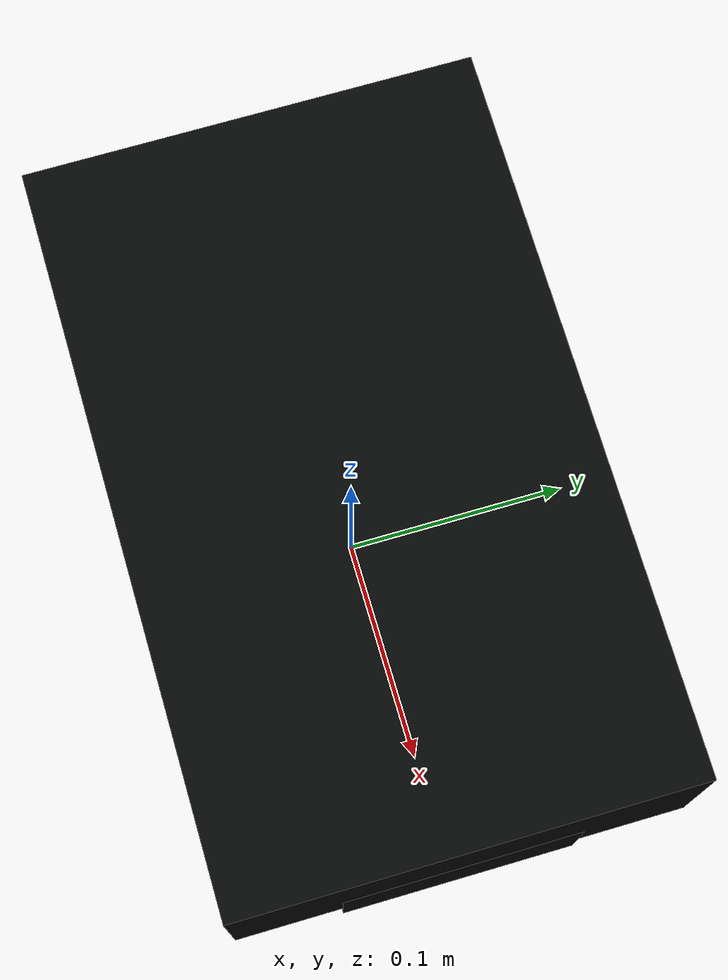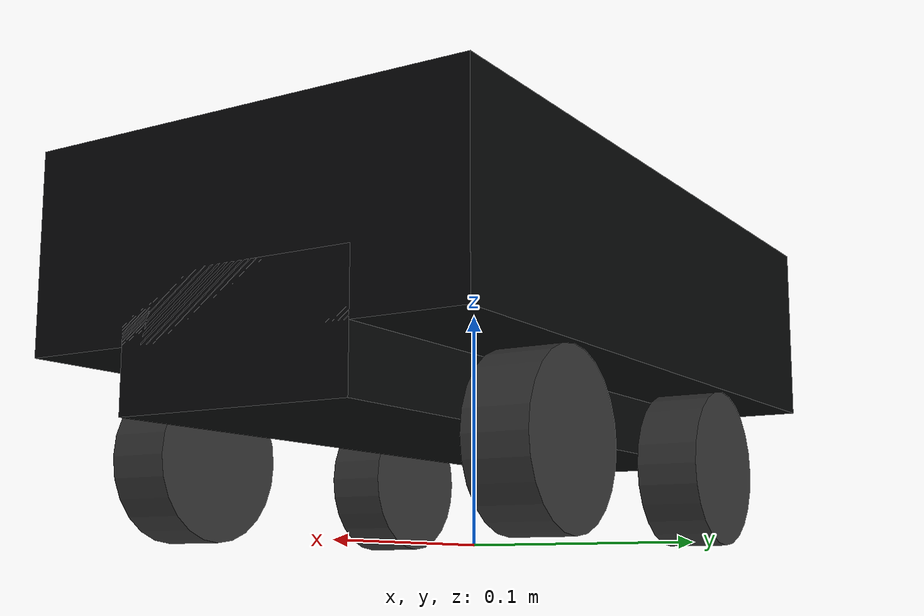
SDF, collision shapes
<?xml version="1.0" ?>
<sdf version="1.7">
  <model name="wheeltec_v550_ackermann">
    <pose>0 0 0 0 0 0</pose>

    <!-- CHASSIS -->
    <link name="base_footprint">
      <pose>0 0 0 0 0 0</pose>
      <inertial>
        <pose>-0.010 0.0 0.095 0 0 0</pose>
        <mass>12.0</mass>
        <inertia><ixx>0.18</ixx><ixy>0</ixy><ixz>0</ixz><iyy>0.24</iyy><iyz>0</iyz><izz>0.32</izz></inertia>
      </inertial>
      <!-- Keep the low underbody clear of the inset wheels, including at full steer. -->
      <collision name="base_collision">
        <pose>0.005 0 0.107 0 0 0</pose>
        <geometry><box><size>0.310 0.190 0.080</size></box></geometry>
        <surface>
          <friction><ode><mu>1.2</mu><mu2>1.2</mu2></ode></friction>
          <contact><ode><kp>500000.0</kp><kd>100.0</kd></ode></contact>
        </surface>
      </collision>
      <collision name="center_underbody_collision">
        <pose>0.005 0 0.067 0 0 0</pose>
        <geometry><box><size>0.310 0.100 0.050</size></box></geometry>
        <surface>
          <friction><ode><mu>1.2</mu><mu2>1.2</mu2></ode></friction>
          <contact><ode><kp>500000.0</kp><kd>100.0</kd></ode></contact>
        </surface>
      </collision>

      <sensor name="base_bumper" type="contact">
        <always_on>true</always_on>
        <update_rate>100.0</update_rate>
        <contact><collision>base_collision</collision></contact>
        <plugin name="base_bumper_plugin" filename="libgazebo_ros_bumper.so">
          <ros><remapping>bumper_states:=bumper_states</remapping></ros>
          <frame_name>base_footprint</frame_name>
        </plugin>
      </sensor>

      <visual name="base_visual">
        <pose>0 0 0.030 0 0 0</pose>
        <geometry><mesh><uri>model://wheeltec_v550_ackermann/meshes/base_link.STL</uri></mesh></geometry>
        <material><ambient>0.015 0.017 0.018 1</ambient><diffuse>0.025 0.028 0.030 1</diffuse><specular>0.08 0.08 0.08 1</specular></material>
      </visual>
      <visual name="lower_chassis_enclosure">
        <pose>0.005 0 0.092 0 0 0</pose>
        <geometry><box><size>0.310 0.190 0.110</size></box></geometry>
        <material><ambient>0.012 0.014 0.015 1</ambient><diffuse>0.020 0.023 0.025 1</diffuse><specular>0.06 0.06 0.06 1</specular></material>
      </visual>
      <visual name="top_equipment_plate">
        <pose>-0.005 0 0.274 0 0 0</pose>
        <geometry><box><size>0.300 0.205 0.010</size></box></geometry>
        <material><ambient>0.010 0.011 0.012 1</ambient><diffuse>0.018 0.019 0.020 1</diffuse><specular>0.10 0.10 0.10 1</specular></material>
      </visual>
      <visual name="top_plate_front_left_standoff">
        <pose>0.115 0.082 0.240 0 0 0</pose>
        <geometry><box><size>0.012 0.012 0.068</size></box></geometry>
        <material><ambient>0.012 0.013 0.014 1</ambient><diffuse>0.020 0.022 0.024 1</diffuse><specular>0.08 0.08 0.08 1</specular></material>
      </visual>
      <visual name="top_plate_front_right_standoff">
        <pose>0.115 -0.082 0.240 0 0 0</pose>
        <geometry><box><size>0.012 0.012 0.068</size></box></geometry>
        <material><ambient>0.012 0.013 0.014 1</ambient><diffuse>0.020 0.022 0.024 1</diffuse><specular>0.08 0.08 0.08 1</specular></material>
      </visual>
      <visual name="top_plate_rear_left_standoff">
        <pose>-0.120 0.082 0.240 0 0 0</pose>
        <geometry><box><size>0.012 0.012 0.068</size></box></geometry>
        <material><ambient>0.012 0.013 0.014 1</ambient><diffuse>0.020 0.022 0.024 1</diffuse><specular>0.08 0.08 0.08 1</specular></material>
      </visual>
      <visual name="top_plate_rear_right_standoff">
        <pose>-0.120 -0.082 0.240 0 0 0</pose>
        <geometry><box><size>0.012 0.012 0.068</size></box></geometry>
        <material><ambient>0.012 0.013 0.014 1</ambient><diffuse>0.020 0.022 0.024 1</diffuse><specular>0.08 0.08 0.08 1</specular></material>
      </visual>
      <visual name="right_side_cyan_trim">
        <pose>0.040 -0.0965 0.078 0 0 0</pose>
        <geometry><box><size>0.115 0.004 0.010</size></box></geometry>
        <material><ambient>0.00 0.65 0.72 1</ambient><diffuse>0.00 0.78 0.86 1</diffuse><emissive>0.00 0.10 0.12 1</emissive></material>
      </visual>
      <visual name="left_side_cyan_trim">
        <pose>0.040 0.0965 0.078 0 0 0</pose>
        <geometry><box><size>0.115 0.004 0.010</size></box></geometry>
        <material><ambient>0.00 0.65 0.72 1</ambient><diffuse>0.00 0.78 0.86 1</diffuse><emissive>0.00 0.10 0.12 1</emissive></material>
      </visual>
      <visual name="front_cyan_trim">
        <pose>0.161 0 0.078 0 0 0</pose>
        <geometry><box><size>0.006 0.145 0.010</size></box></geometry>
        <material><ambient>0.00 0.65 0.72 1</ambient><diffuse>0.00 0.78 0.86 1</diffuse><emissive>0.00 0.10 0.12 1</emissive></material>
      </visual>
      <visual name="right_side_cyan_trim_upper">
        <pose>0.040 -0.0965 0.108 0 0 0</pose>
        <geometry><box><size>0.115 0.004 0.008</size></box></geometry>
        <material><ambient>0.00 0.65 0.72 1</ambient><diffuse>0.00 0.78 0.86 1</diffuse><emissive>0.00 0.10 0.12 1</emissive></material>
      </visual>
      <visual name="left_side_cyan_trim_upper">
        <pose>0.040 0.0965 0.108 0 0 0</pose>
        <geometry><box><size>0.115 0.004 0.008</size></box></geometry>
        <material><ambient>0.00 0.65 0.72 1</ambient><diffuse>0.00 0.78 0.86 1</diffuse><emissive>0.00 0.10 0.12 1</emissive></material>
      </visual>
      <visual name="rear_charge_label">
        <pose>-0.152 0 0.112 0 1.570796 0</pose>
        <geometry><box><size>0.030 0.010 0.002</size></box></geometry>
        <material><ambient>0.92 0.92 0.88 1</ambient><diffuse>0.95 0.95 0.92 1</diffuse></material>
      </visual>
      <visual name="rear_charge_socket">
        <pose>-0.153 0 0.085 0 1.570796 0</pose>
        <geometry><cylinder><radius>0.012</radius><length>0.006</length></cylinder></geometry>
        <material><ambient>0.005 0.005 0.005 1</ambient><diffuse>0.010 0.010 0.010 1</diffuse><specular>0.04 0.04 0.04 1</specular></material>
      </visual>
      <visual name="rear_charge_plug_cap">
        <pose>-0.153 0 0.062 0 1.570796 0</pose>
        <geometry><cylinder><radius>0.007</radius><length>0.004</length></cylinder></geometry>
        <material><ambient>0.01 0.01 0.01 1</ambient><diffuse>0.015 0.015 0.015 1</diffuse></material>
      </visual>
      <visual name="lower_electronics_plate">
        <pose>-0.005 0 0.154 0 0 0</pose>
        <geometry><box><size>0.275 0.180 0.010</size></box></geometry>
        <material><ambient>0.010 0.011 0.012 1</ambient><diffuse>0.018 0.019 0.020 1</diffuse><specular>0.08 0.08 0.08 1</specular></material>
      </visual>
      <visual name="electronics_front_left_standoff">
        <pose>0.105 0.072 0.135 0 0 0</pose>
        <geometry><box><size>0.010 0.010 0.038</size></box></geometry>
        <material><ambient>0.012 0.013 0.014 1</ambient><diffuse>0.020 0.022 0.024 1</diffuse><specular>0.08 0.08 0.08 1</specular></material>
      </visual>
      <visual name="electronics_front_right_standoff">
        <pose>0.105 -0.072 0.135 0 0 0</pose>
        <geometry><box><size>0.010 0.010 0.038</size></box></geometry>
        <material><ambient>0.012 0.013 0.014 1</ambient><diffuse>0.020 0.022 0.024 1</diffuse><specular>0.08 0.08 0.08 1</specular></material>
      </visual>
      <visual name="electronics_rear_left_standoff">
        <pose>-0.105 0.072 0.135 0 0 0</pose>
        <geometry><box><size>0.010 0.010 0.038</size></box></geometry>
        <material><ambient>0.012 0.013 0.014 1</ambient><diffuse>0.020 0.022 0.024 1</diffuse><specular>0.08 0.08 0.08 1</specular></material>
      </visual>
      <visual name="electronics_rear_right_standoff">
        <pose>-0.105 -0.072 0.135 0 0 0</pose>
        <geometry><box><size>0.010 0.010 0.038</size></box></geometry>
        <material><ambient>0.012 0.013 0.014 1</ambient><diffuse>0.020 0.022 0.024 1</diffuse><specular>0.08 0.08 0.08 1</specular></material>
      </visual>
      <visual name="middle_electronics_board">
        <pose>-0.015 0 0.180 0 0 0</pose>
        <geometry><box><size>0.165 0.085 0.024</size></box></geometry>
        <material><ambient>0.015 0.035 0.020 1</ambient><diffuse>0.025 0.080 0.040 1</diffuse><specular>0.02 0.03 0.02 1</specular></material>
      </visual>
      <visual name="middle_electronics_ports">
        <pose>0.010 -0.044 0.180 0 0 0</pose>
        <geometry><box><size>0.085 0.006 0.010</size></box></geometry>
        <material><ambient>0.08 0.08 0.08 1</ambient><diffuse>0.12 0.12 0.12 1</diffuse></material>
      </visual>
      <visual name="rear_center_riser">
        <pose>-0.020 0 0.205 0 0 0</pose>
        <geometry><box><size>0.035 0.060 0.085</size></box></geometry>
        <material><ambient>0.012 0.013 0.014 1</ambient><diffuse>0.020 0.022 0.024 1</diffuse><specular>0.08 0.08 0.08 1</specular></material>
      </visual>
      <visual name="left_rear_antenna_stem">
        <pose>-0.128 0.086 0.330 0 0 0</pose>
        <geometry><cylinder><radius>0.006</radius><length>0.105</length></cylinder></geometry>
        <material><ambient>0.006 0.006 0.006 1</ambient><diffuse>0.012 0.012 0.012 1</diffuse></material>
      </visual>
      <visual name="left_rear_antenna_head">
        <pose>-0.128 0.086 0.386 1.570796 0 0</pose>
        <geometry><cylinder><radius>0.006</radius><length>0.030</length></cylinder></geometry>
        <material><ambient>0.006 0.006 0.006 1</ambient><diffuse>0.012 0.012 0.012 1</diffuse></material>
      </visual>
      <visual name="right_rear_antenna_stem">
        <pose>-0.128 -0.086 0.330 0 0 0</pose>
        <geometry><cylinder><radius>0.006</radius><length>0.105</length></cylinder></geometry>
        <material><ambient>0.006 0.006 0.006 1</ambient><diffuse>0.012 0.012 0.012 1</diffuse></material>
      </visual>
      <visual name="right_rear_antenna_head">
        <pose>-0.128 -0.086 0.386 1.570796 0 0</pose>
        <geometry><cylinder><radius>0.006</radius><length>0.030</length></cylinder></geometry>
        <material><ambient>0.006 0.006 0.006 1</ambient><diffuse>0.012 0.012 0.012 1</diffuse></material>
      </visual>
      <visual name="rear_cable_crossbar">
        <pose>-0.075 0 0.305 1.570796 0 0</pose>
        <geometry><cylinder><radius>0.004</radius><length>0.150</length></cylinder></geometry>
        <material><ambient>0.003 0.003 0.003 1</ambient><diffuse>0.006 0.006 0.006 1</diffuse></material>
      </visual>
      <visual name="lidar_rear_cable_drop">
        <pose>-0.110 -0.040 0.400 0 0 0</pose>
        <geometry><cylinder><radius>0.004</radius><length>0.195</length></cylinder></geometry>
        <material><ambient>0.003 0.003 0.003 1</ambient><diffuse>0.006 0.006 0.006 1</diffuse></material>
      </visual>
      <visual name="front_guard_tube">
        <pose>0.070 0 0.292 1.570796 0 0</pose>
        <geometry><cylinder><radius>0.006</radius><length>0.205</length></cylinder></geometry>
        <material><ambient>0.008 0.008 0.008 1</ambient><diffuse>0.015 0.015 0.015 1</diffuse></material>
      </visual>
      <visual name="front_guard_left_post">
        <pose>0.070 0.096 0.282 0 0 0</pose>
        <geometry><cylinder><radius>0.004</radius><length>0.028</length></cylinder></geometry>
        <material><ambient>0.008 0.008 0.008 1</ambient><diffuse>0.015 0.015 0.015 1</diffuse></material>
      </visual>
      <visual name="front_guard_right_post">
        <pose>0.070 -0.096 0.282 0 0 0</pose>
        <geometry><cylinder><radius>0.004</radius><length>0.028</length></cylinder></geometry>
        <material><ambient>0.008 0.008 0.008 1</ambient><diffuse>0.015 0.015 0.015 1</diffuse></material>
      </visual>

      <visual name="laser_visual">
        <pose>-0.075 0 0.530 0 0 0</pose>
        <geometry><mesh><uri>model://wheeltec_v550_ackermann/meshes/laser_link.STL</uri></mesh></geometry>
        <material><ambient>0.015 0.015 0.015 1</ambient><diffuse>0.020 0.020 0.020 1</diffuse><specular>0.18 0.18 0.18 1</specular></material>
      </visual>
      <visual name="lidar_mount_base_plate">
        <pose>-0.075 0 0.282 0 0 0</pose>
        <geometry><box><size>0.135 0.105 0.008</size></box></geometry>
        <material><ambient>0.12 0.13 0.13 1</ambient><diffuse>0.15 0.16 0.16 1</diffuse></material>
      </visual>
      <visual name="lidar_mount_front_left_post">
        <pose>-0.030 0.040 0.390 0 0 0</pose>
        <geometry><box><size>0.008 0.008 0.210</size></box></geometry>
        <material><ambient>0.34 0.36 0.37 1</ambient><diffuse>0.48 0.50 0.51 1</diffuse><specular>0.30 0.30 0.30 1</specular></material>
      </visual>
      <visual name="lidar_mount_front_right_post">
        <pose>-0.030 -0.040 0.390 0 0 0</pose>
        <geometry><box><size>0.008 0.008 0.210</size></box></geometry>
        <material><ambient>0.34 0.36 0.37 1</ambient><diffuse>0.48 0.50 0.51 1</diffuse><specular>0.30 0.30 0.30 1</specular></material>
      </visual>
      <visual name="lidar_mount_rear_left_post">
        <pose>-0.120 0.040 0.390 0 0 0</pose>
        <geometry><box><size>0.008 0.008 0.210</size></box></geometry>
        <material><ambient>0.34 0.36 0.37 1</ambient><diffuse>0.48 0.50 0.51 1</diffuse><specular>0.30 0.30 0.30 1</specular></material>
      </visual>
      <visual name="lidar_mount_rear_right_post">
        <pose>-0.120 -0.040 0.390 0 0 0</pose>
        <geometry><box><size>0.008 0.008 0.210</size></box></geometry>
        <material><ambient>0.34 0.36 0.37 1</ambient><diffuse>0.48 0.50 0.51 1</diffuse><specular>0.30 0.30 0.30 1</specular></material>
      </visual>
      <visual name="lidar_mount_top_plate">
        <pose>-0.075 0 0.496 0 0 0</pose>
        <geometry><box><size>0.135 0.105 0.010</size></box></geometry>
        <material><ambient>0.12 0.13 0.13 1</ambient><diffuse>0.15 0.16 0.16 1</diffuse></material>
      </visual>
      <visual name="camera_mount_plate">
        <pose>0.085 0 0.282 0 0 0</pose>
        <geometry><box><size>0.100 0.185 0.008</size></box></geometry>
        <material><ambient>0.12 0.13 0.13 1</ambient><diffuse>0.15 0.16 0.16 1</diffuse></material>
      </visual>
      <visual name="camera_rear_upright">
        <pose>0.095 0 0.350 0 0 0</pose>
        <geometry><box><size>0.012 0.150 0.130</size></box></geometry>
        <material><ambient>0.12 0.13 0.13 1</ambient><diffuse>0.15 0.16 0.16 1</diffuse></material>
      </visual>
      <visual name="camera_visual">
        <pose>0.125 0 0.405 0 0 0</pose>
        <geometry><mesh><uri>model://wheeltec_v550_ackermann/meshes/camera_link.STL</uri></mesh></geometry>
        <material><ambient>0.2 0.2 0.2 1</ambient></material>
      </visual>
      <visual name="controller_visual">
        <pose>-0.035 -0.020 0.192 0 0 0</pose>
        <geometry><mesh><uri>model://wheeltec_v550_ackermann/meshes/controller_link.STL</uri></mesh></geometry>
        <material><ambient>0.020 0.022 0.024 1</ambient><diffuse>0.030 0.033 0.036 1</diffuse></material>
      </visual>
      <visual name="middle_equipment_plate">
        <pose>-0.005 0 0.208 0 0 0</pose>
        <geometry><box><size>0.285 0.190 0.010</size></box></geometry>
        <material><ambient>0.010 0.011 0.012 1</ambient><diffuse>0.018 0.019 0.020 1</diffuse><specular>0.10 0.10 0.10 1</specular></material>
      </visual>
      <visual name="front_camera_housing">
        <pose>0.145 0 0.405 0 0 0</pose>
        <geometry><box><size>0.050 0.145 0.050</size></box></geometry>
        <material><ambient>0.018 0.020 0.022 1</ambient><diffuse>0.030 0.034 0.038 1</diffuse><specular>0.10 0.10 0.10 1</specular></material>
      </visual>
      <visual name="front_camera_left_lens">
        <pose>0.172 0.043 0.405 0 1.570796 0</pose>
        <geometry><cylinder><radius>0.016</radius><length>0.008</length></cylinder></geometry>
        <material><ambient>0.005 0.010 0.014 1</ambient><diffuse>0.010 0.025 0.035 1</diffuse><specular>0.35 0.40 0.45 1</specular></material>
      </visual>
      <visual name="front_camera_right_lens">
        <pose>0.172 -0.043 0.405 0 1.570796 0</pose>
        <geometry><cylinder><radius>0.016</radius><length>0.008</length></cylinder></geometry>
        <material><ambient>0.005 0.010 0.014 1</ambient><diffuse>0.010 0.025 0.035 1</diffuse><specular>0.35 0.40 0.45 1</specular></material>
      </visual>
      <visual name="lidar_black_base">
        <pose>-0.075 0 0.507 0 0 0</pose>
        <geometry><cylinder><radius>0.061</radius><length>0.020</length></cylinder></geometry>
        <material><ambient>0.006 0.007 0.008 1</ambient><diffuse>0.012 0.014 0.016 1</diffuse><specular>0.16 0.16 0.16 1</specular></material>
      </visual>
      <visual name="lidar_black_tower">
        <pose>-0.075 0 0.538 0 0 0</pose>
        <geometry><cylinder><radius>0.058</radius><length>0.045</length></cylinder></geometry>
        <material><ambient>0.004 0.005 0.006 1</ambient><diffuse>0.010 0.012 0.014 1</diffuse><specular>0.22 0.22 0.22 1</specular></material>
      </visual>

      <sensor name="akm_imu" type="imu">
        <always_on>true</always_on><update_rate>100</update_rate>
        <plugin name="v550_imu" filename="libgazebo_ros_imu_sensor.so">
          <ros><remapping>~/out:=imu</remapping></ros>
        </plugin>
      </sensor>

      <sensor name="v550_lidar" type="ray">
        <pose>-0.075 0 0.540 0 0 0</pose>
        <always_on>true</always_on><visualize>false</visualize><update_rate>15</update_rate>
        <ray>
          <scan><horizontal><samples>360</samples><resolution>1.0</resolution><min_angle>-3.141593</min_angle><max_angle>3.141593</max_angle></horizontal></scan>
          <range><min>0.12</min><max>10.0</max></range>
        </ray>
        <plugin name="v550_laserscan" filename="libgazebo_ros_ray_sensor.so">
          <ros><remapping>~/out:=scan</remapping></ros>
          <output_type>sensor_msgs/LaserScan</output_type>
          <frame_name>base_scan</frame_name>
        </plugin>
      </sensor>
    </link>
    <!-- RB WHEEL -->
    <joint name="rb_wheel_joint" type="revolute">
      <pose relative_to="base_footprint">-0.05574 -0.08000 0.0332 0 0 0</pose>
      <parent>base_footprint</parent>
      <child>rb_wheel_link</child>
      <axis><xyz>0 1 0</xyz><limit><lower>-100000</lower><upper>100000</upper><effort>18.0</effort><velocity>45</velocity></limit><dynamics><damping>0.006</damping><friction>0.001</friction></dynamics></axis>
    </joint>
    <link name="rb_wheel_link">
      <pose relative_to="rb_wheel_joint">0 0 0 0 0 0</pose>
      <inertial><mass>0.2</mass><inertia><ixx>0.0001</ixx><ixy>0</ixy><ixz>0</ixz><iyy>0.0002</iyy><iyz>0</iyz><izz>0.0001</izz></inertia></inertial>
      <visual name="rb_wheel_visual">
        <pose>0 0 0 0 0 0</pose>
        <geometry><mesh><uri>model://wheeltec_v550_ackermann/meshes/rb_wheel_link.STL</uri></mesh></geometry>
        <material><ambient>0.2 0.2 0.2 1</ambient></material>
      </visual>
      <visual name="rb_wheel_teal_hub">
        <pose>0 -0.011 0 1.570796 0 0</pose>
        <geometry><cylinder><radius>0.020</radius><length>0.004</length></cylinder></geometry>
        <material><ambient>0.00 0.62 0.70 1</ambient><diffuse>0.00 0.78 0.86 1</diffuse><specular>0.12 0.12 0.12 1</specular></material>
      </visual>
      <!-- Collision is rotated 90 deg around X (roll) to align cylinder Z-axis with Y-axis -->
      <collision name="rb_wheel_collision">
        <pose>0 0 0 1.570796 0 0</pose>
        <geometry><cylinder><radius>0.0332</radius><length>0.026</length></cylinder></geometry>
        <surface>
          <friction><ode><mu>1.4</mu><mu2>1.2</mu2><slip1>0.001</slip1><slip2>0.001</slip2></ode></friction>
          <contact><ode><kp>500000.0</kp><kd>100.0</kd></ode></contact>
        </surface>
      </collision>
    </link>
    <!-- LB WHEEL -->
    <joint name="lb_wheel_joint" type="revolute">
      <pose relative_to="base_footprint">-0.05574 0.08000 0.0332 0 0 0</pose>
      <parent>base_footprint</parent>
      <child>lb_wheel_link</child>
      <axis><xyz>0 1 0</xyz><limit><lower>-100000</lower><upper>100000</upper><effort>18.0</effort><velocity>45</velocity></limit><dynamics><damping>0.006</damping><friction>0.001</friction></dynamics></axis>
    </joint>
    <link name="lb_wheel_link">
      <pose relative_to="lb_wheel_joint">0 0 0 0 0 0</pose>
      <inertial><mass>0.2</mass><inertia><ixx>0.0001</ixx><ixy>0</ixy><ixz>0</ixz><iyy>0.0002</iyy><iyz>0</iyz><izz>0.0001</izz></inertia></inertial>
      <visual name="lb_wheel_visual">
        <pose>0 0 0 0 0 0</pose>
        <geometry><mesh><uri>model://wheeltec_v550_ackermann/meshes/lb_wheel_link.STL</uri></mesh></geometry>
        <material><ambient>0.2 0.2 0.2 1</ambient></material>
      </visual>
      <visual name="lb_wheel_teal_hub">
        <pose>0 0.011 0 1.570796 0 0</pose>
        <geometry><cylinder><radius>0.020</radius><length>0.004</length></cylinder></geometry>
        <material><ambient>0.00 0.62 0.70 1</ambient><diffuse>0.00 0.78 0.86 1</diffuse><specular>0.12 0.12 0.12 1</specular></material>
      </visual>
      <!-- Collision is rotated 90 deg around X (roll) to align cylinder Z-axis with Y-axis -->
      <collision name="lb_wheel_collision">
        <pose>0 0 0 1.570796 0 0</pose>
        <geometry><cylinder><radius>0.0332</radius><length>0.026</length></cylinder></geometry>
        <surface>
          <friction><ode><mu>1.4</mu><mu2>1.2</mu2><slip1>0.001</slip1><slip2>0.001</slip2></ode></friction>
          <contact><ode><kp>500000.0</kp><kd>100.0</kd></ode></contact>
        </surface>
      </collision>
    </link>
    <!-- RF STEERING DUMMY -->
    <joint name="rf_steer_joint" type="revolute">
      <pose relative_to="base_footprint">0.08751 -0.08000 0.0332 0 0 0</pose>
      <parent>base_footprint</parent>
      <child>rf_steer_link</child>
      <!-- Z axis is inverted for ackermann plugin convention -->
      <axis><xyz>0 0 -1</xyz><limit><lower>-0.45</lower><upper>0.45</upper><effort>1.2</effort><velocity>3.0</velocity></limit><dynamics><damping>0.08</damping><friction>0.02</friction></dynamics></axis>
    </joint>
    <link name="rf_steer_link">
      <pose relative_to="rf_steer_joint">0 0 0 0 0 0</pose>
      <inertial><mass>0.10</mass><inertia><ixx>5e-5</ixx><ixy>0</ixy><ixz>0</ixz><iyy>5e-5</iyy><iyz>0</iyz><izz>5e-5</izz></inertia></inertial>
    </link>
    <!-- RF WHEEL -->
    <joint name="rf_wheel_joint" type="revolute">
      <pose relative_to="rf_steer_link">0 0 0 0 0 0</pose>
      <parent>rf_steer_link</parent>
      <child>rf_wheel_link</child>
      <axis><xyz>0 1 0</xyz><limit><lower>-100000</lower><upper>100000</upper><effort>1.0</effort><velocity>45</velocity></limit><dynamics><damping>0.004</damping><friction>0.001</friction></dynamics></axis>
    </joint>
    <link name="rf_wheel_link">
      <pose relative_to="rf_wheel_joint">0 0 0 0 0 0</pose>
      <inertial><mass>0.2</mass><inertia><ixx>0.0001</ixx><ixy>0</ixy><ixz>0</ixz><iyy>0.0002</iyy><iyz>0</iyz><izz>0.0001</izz></inertia></inertial>
      <visual name="rf_wheel_visual">
        <pose>0 0 0 0 0 0</pose>
        <geometry><mesh><uri>model://wheeltec_v550_ackermann/meshes/rf_wheel_link.STL</uri></mesh></geometry>
        <material><ambient>0.2 0.2 0.2 1</ambient></material>
      </visual>
      <visual name="rf_wheel_teal_hub">
        <pose>0 -0.011 0 1.570796 0 0</pose>
        <geometry><cylinder><radius>0.020</radius><length>0.004</length></cylinder></geometry>
        <material><ambient>0.00 0.62 0.70 1</ambient><diffuse>0.00 0.78 0.86 1</diffuse><specular>0.12 0.12 0.12 1</specular></material>
      </visual>
      <!-- Collision is rotated 90 deg around X (roll) to align cylinder Z-axis with Y-axis -->
      <collision name="rf_wheel_collision">
        <pose>0 0 0 1.570796 0 0</pose>
        <geometry><cylinder><radius>0.0332</radius><length>0.026</length></cylinder></geometry>
        <surface>
          <friction><ode><mu>1.4</mu><mu2>1.2</mu2><slip1>0.001</slip1><slip2>0.001</slip2></ode></friction>
          <contact><ode><kp>500000.0</kp><kd>100.0</kd></ode></contact>
        </surface>
      </collision>
    </link>
    <!-- LF STEERING DUMMY -->
    <joint name="lf_steer_joint" type="revolute">
      <pose relative_to="base_footprint">0.08751 0.08000 0.0332 0 0 0</pose>
      <parent>base_footprint</parent>
      <child>lf_steer_link</child>
      <!-- Z axis is inverted for ackermann plugin convention -->
      <axis><xyz>0 0 -1</xyz><limit><lower>-0.45</lower><upper>0.45</upper><effort>1.2</effort><velocity>3.0</velocity></limit><dynamics><damping>0.08</damping><friction>0.02</friction></dynamics></axis>
    </joint>
    <link name="lf_steer_link">
      <pose relative_to="lf_steer_joint">0 0 0 0 0 0</pose>
      <inertial><mass>0.10</mass><inertia><ixx>5e-5</ixx><ixy>0</ixy><ixz>0</ixz><iyy>5e-5</iyy><iyz>0</iyz><izz>5e-5</izz></inertia></inertial>
    </link>
    <!-- LF WHEEL -->
    <joint name="lf_wheel_joint" type="revolute">
      <pose relative_to="lf_steer_link">0 0 0 0 0 0</pose>
      <parent>lf_steer_link</parent>
      <child>lf_wheel_link</child>
      <axis><xyz>0 1 0</xyz><limit><lower>-100000</lower><upper>100000</upper><effort>1.0</effort><velocity>45</velocity></limit><dynamics><damping>0.004</damping><friction>0.001</friction></dynamics></axis>
    </joint>
    <link name="lf_wheel_link">
      <pose relative_to="lf_wheel_joint">0 0 0 0 0 0</pose>
      <inertial><mass>0.2</mass><inertia><ixx>0.0001</ixx><ixy>0</ixy><ixz>0</ixz><iyy>0.0002</iyy><iyz>0</iyz><izz>0.0001</izz></inertia></inertial>
      <visual name="lf_wheel_visual">
        <pose>0 0 0 0 0 0</pose>
        <geometry><mesh><uri>model://wheeltec_v550_ackermann/meshes/lf_wheel_link.STL</uri></mesh></geometry>
        <material><ambient>0.2 0.2 0.2 1</ambient></material>
      </visual>
      <visual name="lf_wheel_teal_hub">
        <pose>0 0.011 0 1.570796 0 0</pose>
        <geometry><cylinder><radius>0.020</radius><length>0.004</length></cylinder></geometry>
        <material><ambient>0.00 0.62 0.70 1</ambient><diffuse>0.00 0.78 0.86 1</diffuse><specular>0.12 0.12 0.12 1</specular></material>
      </visual>
      <!-- Collision is rotated 90 deg around X (roll) to align cylinder Z-axis with Y-axis -->
      <collision name="lf_wheel_collision">
        <pose>0 0 0 1.570796 0 0</pose>
        <geometry><cylinder><radius>0.0332</radius><length>0.026</length></cylinder></geometry>
        <surface>
          <friction><ode><mu>1.4</mu><mu2>1.2</mu2><slip1>0.001</slip1><slip2>0.001</slip2></ode></friction>
          <contact><ode><kp>500000.0</kp><kd>100.0</kd></ode></contact>
        </surface>
      </collision>
    </link>
    <plugin name="v550_ackermann_drive" filename="libv550_safe_ackermann_drive.so">
      <ros>
        <remapping>cmd_vel:=cmd_vel</remapping>
        <remapping>odom:=odom</remapping>
      </ros>

      <update_rate>100.0</update_rate>

      <front_left_joint>lf_wheel_joint</front_left_joint>
      <front_right_joint>rf_wheel_joint</front_right_joint>
      <rear_left_joint>lb_wheel_joint</rear_left_joint>
      <rear_right_joint>rb_wheel_joint</rear_right_joint>

      <left_steering_joint>lf_steer_joint</left_steering_joint>
      <right_steering_joint>rf_steer_joint</right_steering_joint>

      <wheel_separation>0.160</wheel_separation>
      <wheel_base>0.1432</wheel_base>
      <wheel_radius>0.0332</wheel_radius>

      <min_steer>-0.35</min_steer>
      <max_steer>0.35</max_steer>

      <max_speed>1.5</max_speed>
      <max_steering_angle>0.35</max_steering_angle>

      <!-- PID gains for steering; rear drive uses a bounded velocity motor. -->
      <right_steering_pid_gain>8.0 0.0 0.12</right_steering_pid_gain>
      <left_steering_pid_gain>8.0 0.0 0.12</left_steering_pid_gain>
      <steering_torque_limit>1.00</steering_torque_limit>
      <drive_torque_limit>0.60</drive_torque_limit>
      <brake_torque_limit>0.80</brake_torque_limit>
      <command_timeout>0.50</command_timeout>
      <parking_brake>true</parking_brake>
      <parking_linear_threshold>0.10</parking_linear_threshold>
      <parking_angular_threshold>0.50</parking_angular_threshold>

      <publish_odom>true</publish_odom>
      <publish_odom_tf>false</publish_odom_tf>
      <publish_wheel_tf>false</publish_wheel_tf>
      <publish_distance_to_center>true</publish_distance_to_center>
      <odometry_frame>odom</odometry_frame>
      <robot_base_frame>base_footprint</robot_base_frame>
    </plugin>

    <plugin name="v550_joint_state" filename="libgazebo_ros_joint_state_publisher.so">
      <ros>
        <remapping>joint_states:=joint_states_raw</remapping>
      </ros>
      <update_rate>30</update_rate>
      <joint_name>rf_wheel_joint</joint_name>
      <joint_name>lf_wheel_joint</joint_name>
      <joint_name>rb_wheel_joint</joint_name>
      <joint_name>lb_wheel_joint</joint_name>
      <joint_name>rf_steer_joint</joint_name>
      <joint_name>lf_steer_joint</joint_name>
    </plugin>

  </model>
</sdf>
